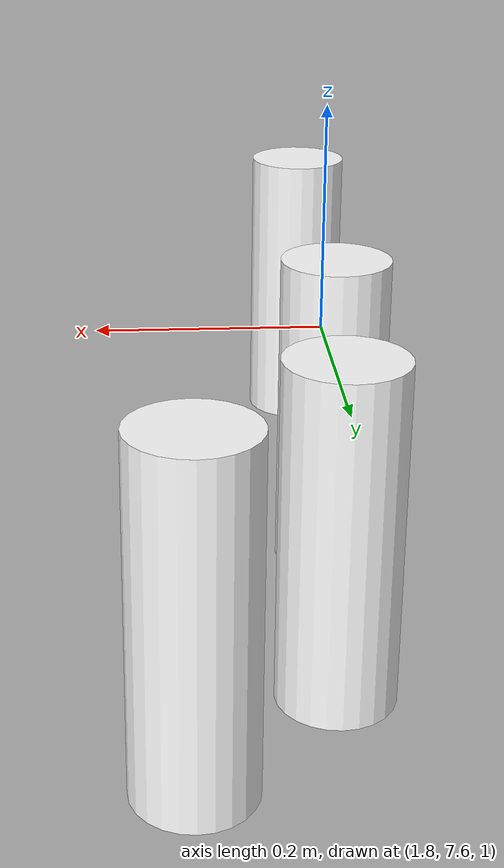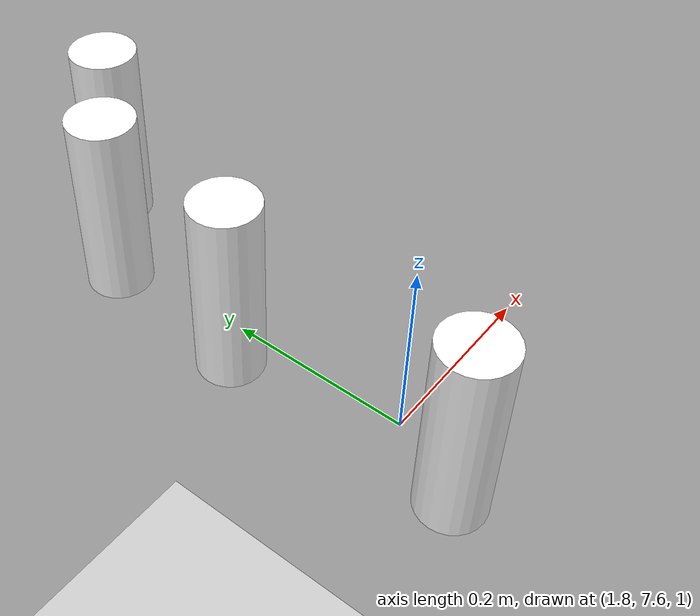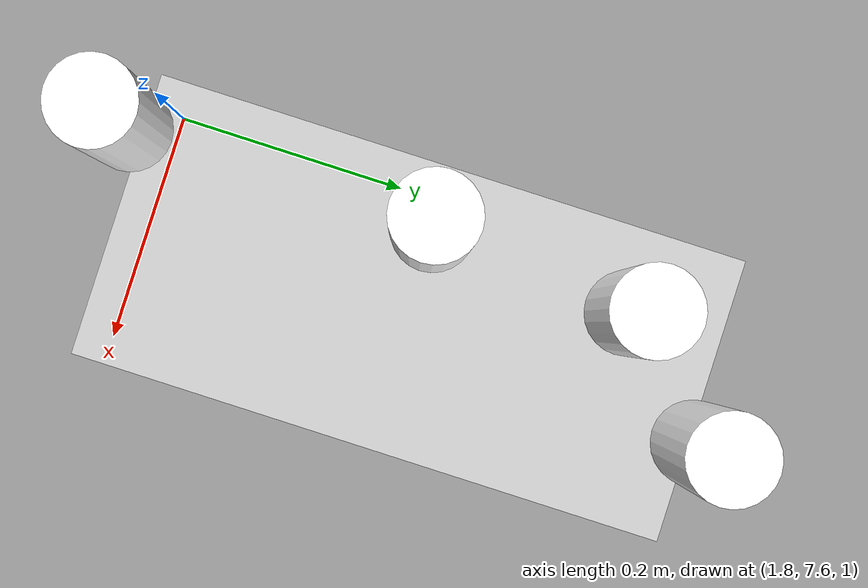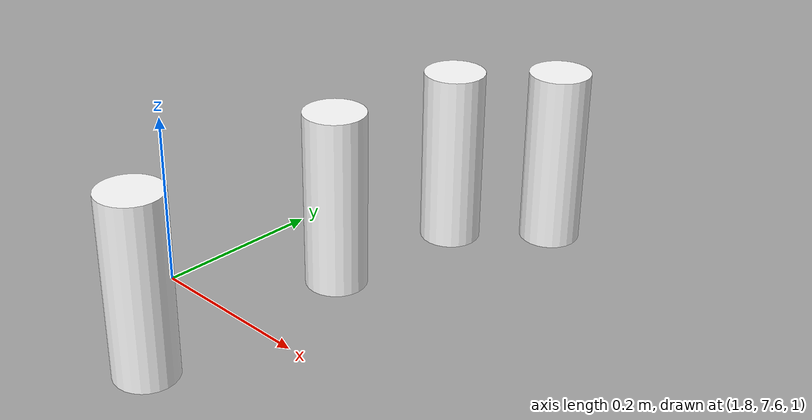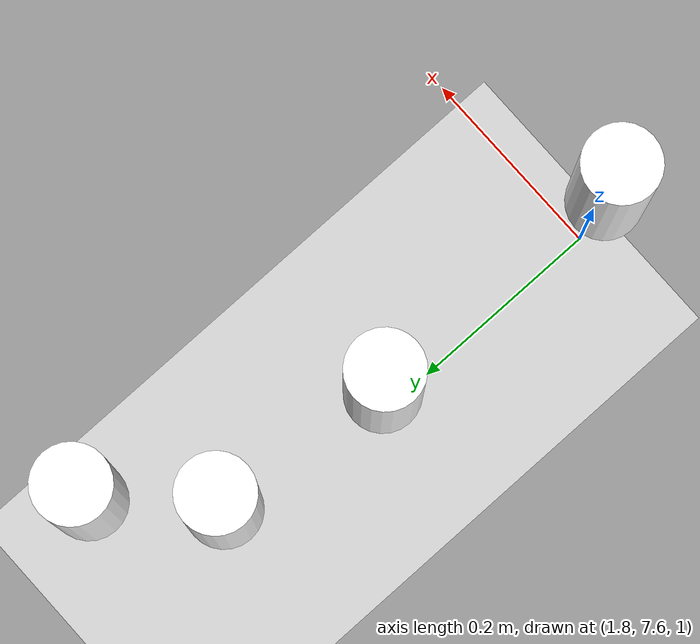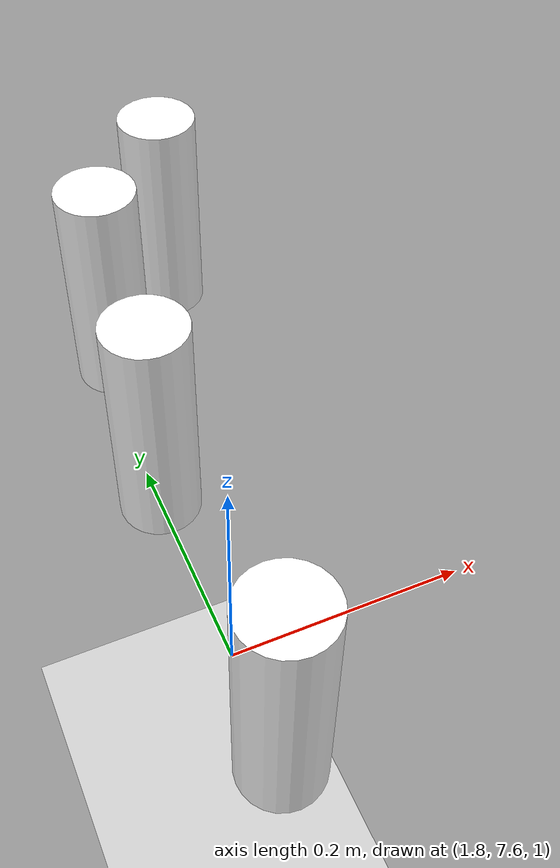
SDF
<sdf version="1.6">
 <world name="default">
  <model name="ground_plane">
   <static>1</static>
   <link name="link">
    <collision name="collision">
     <geometry><plane><normal>0 0 1</normal><size>100 100</size></plane></geometry>
     <surface><friction><ode><mu>100</mu><mu2>50</mu2></ode></friction></surface>
    </collision>
    <visual name="visual">
     <cast_shadows>0</cast_shadows>
     <geometry><plane><normal>0 0 1</normal><size>100 100</size></plane></geometry>
     <material>
      <script><uri>file://media/materials/scripts/gazebo.material</uri><name>Gazebo/Grey</name></script>
     </material>
    </visual>
   </link>
  </model>
  <model name="pringles_clone">
   <link name="link">
    <inertial>
     <mass>0.25</mass>
     <inertia><ixx>0</ixx><ixy>0</ixy><ixz>0</ixz><iyy>0</iyy><iyz>0</iyz><izz>0</izz></inertia>
    </inertial>
    <velocity_decay><linear>0</linear><angular>0</angular></velocity_decay>
    <visual name="visual">
     <geometry><cylinder><radius>0.04</radius><length>0.235</length></cylinder></geometry>
     <material>
      <script>
       <uri>model://pringles/material/scripts</uri>
       <uri>model://pringles/material/textures</uri>
       <name>Custom/pringles</name>
      </script>
      <shader type="pixel"/>
      <ambient>1 1 1 1</ambient>
      <diffuse>1 1 1 1</diffuse>
      <specular>0 0 0 1</specular>
      <emissive>0 0 0 1</emissive>
     </material>
    </visual>
    <collision name="collision">
     <geometry><cylinder><radius>0.04</radius><length>0.235</length></cylinder></geometry>
     <surface>
      <friction>
       <ode><mu>1</mu><mu2>1</mu2><fdir1>0 0 0</fdir1><slip1>0</slip1><slip2>0</slip2></ode>
       <torsional>
        <coefficient>1</coefficient>
        <patch_radius>0</patch_radius>
        <surface_radius>0</surface_radius>
        <use_patch_radius>1</use_patch_radius>
        <ode><slip>0</slip></ode>
       </torsional>
      </friction>
      <bounce><restitution_coefficient>0</restitution_coefficient><threshold>1e+06</threshold></bounce>
      <contact>
       <collide_without_contact>0</collide_without_contact>
       <collide_without_contact_bitmask>1</collide_without_contact_bitmask>
       <collide_bitmask>1</collide_bitmask>
       <ode>
        <soft_cfm>0</soft_cfm>
        <soft_erp>0.2</soft_erp>
        <kp>1e+13</kp>
        <kd>1</kd>
        <max_vel>0.01</max_vel>
        <min_depth>0</min_depth>
       </ode>
       <bullet>
        <split_impulse>1</split_impulse>
        <split_impulse_penetration_threshold>-0.01</split_impulse_penetration_threshold>
        <soft_cfm>0</soft_cfm>
        <soft_erp>0.2</soft_erp>
        <kp>1e+13</kp>
        <kd>1</kd>
       </bullet>
      </contact>
     </surface>
    </collision>
   </link>
   <static>1</static>
   <pose>1.81767 7.54223 1.0228 0 -0 0</pose>
  </model>
  <model name="pringles_clone_2">
   <link name="link">
    <inertial>
     <mass>0.25</mass>
     <inertia><ixx>0</ixx><ixy>0</ixy><ixz>0</ixz><iyy>0</iyy><iyz>0</iyz><izz>0</izz></inertia>
    </inertial>
    <velocity_decay><linear>0</linear><angular>0</angular></velocity_decay>
    <visual name="visual">
     <geometry><cylinder><radius>0.04</radius><length>0.235</length></cylinder></geometry>
     <material>
      <script>
       <uri>model://pringles/material/scripts</uri>
       <uri>model://pringles/material/textures</uri>
       <name>Custom/pringles</name>
      </script>
      <shader type="pixel"/>
      <ambient>1 1 1 1</ambient>
      <diffuse>1 1 1 1</diffuse>
      <specular>0 0 0 1</specular>
      <emissive>0 0 0 1</emissive>
     </material>
    </visual>
    <collision name="collision">
     <geometry><cylinder><radius>0.04</radius><length>0.235</length></cylinder></geometry>
     <surface>
      <friction>
       <ode><mu>1</mu><mu2>1</mu2><fdir1>0 0 0</fdir1><slip1>0</slip1><slip2>0</slip2></ode>
       <torsional>
        <coefficient>1</coefficient>
        <patch_radius>0</patch_radius>
        <surface_radius>0</surface_radius>
        <use_patch_radius>1</use_patch_radius>
        <ode><slip>0</slip></ode>
       </torsional>
      </friction>
      <bounce><restitution_coefficient>0</restitution_coefficient><threshold>1e+06</threshold></bounce>
      <contact>
       <collide_without_contact>0</collide_without_contact>
       <collide_without_contact_bitmask>1</collide_without_contact_bitmask>
       <collide_bitmask>1</collide_bitmask>
       <ode>
        <soft_cfm>0</soft_cfm>
        <soft_erp>0.2</soft_erp>
        <kp>1e+13</kp>
        <kd>1</kd>
        <max_vel>0.01</max_vel>
        <min_depth>0</min_depth>
       </ode>
       <bullet>
        <split_impulse>1</split_impulse>
        <split_impulse_penetration_threshold>-0.01</split_impulse_penetration_threshold>
        <soft_cfm>0</soft_cfm>
        <soft_erp>0.2</soft_erp>
        <kp>1e+13</kp>
        <kd>1</kd>
       </bullet>
      </contact>
     </surface>
    </collision>
   </link>
   <static>1</static>
   <pose>1.82108 7.83735 1.0228 0 -0 0</pose>
  </model>
  <model name="pringles2">
   <link name="link">
    <inertial>
     <mass>0.25</mass>
     <inertia><ixx>0</ixx><ixy>0</ixy><ixz>0</ixz><iyy>0</iyy><iyz>0</iyz><izz>0</izz></inertia>
    </inertial>
    <velocity_decay><linear>0</linear><angular>0</angular></velocity_decay>
    <visual name="visual">
     <pose>0 0 0.12 -3.14159 0 0</pose>
     <geometry><cylinder><radius>0.04</radius><length>0.235</length></cylinder></geometry>
     <material>
      <script>
       <uri>model://pringles2/material/scripts</uri>
       <uri>model://pringles2/material/textures</uri>
       <name>Custom/pringles2</name>
      </script>
      <shader type="pixel"/>
      <ambient>1 1 1 1</ambient>
      <diffuse>1 1 1 1</diffuse>
      <specular>0 0 0 1</specular>
      <emissive>0 0 0 1</emissive>
     </material>
    </visual>
    <collision name="collision">
     <pose>0 0 0.12 -3.14159 0 0</pose>
     <geometry><cylinder><radius>0.04</radius><length>0.235</length></cylinder></geometry>
     <surface>
      <friction>
       <ode><mu>1</mu><mu2>1</mu2><fdir1>0 0 0</fdir1><slip1>0</slip1><slip2>0</slip2></ode>
       <torsional>
        <coefficient>1</coefficient>
        <patch_radius>0</patch_radius>
        <surface_radius>0</surface_radius>
        <use_patch_radius>1</use_patch_radius>
        <ode><slip>0</slip></ode>
       </torsional>
      </friction>
      <bounce><restitution_coefficient>0</restitution_coefficient><threshold>1e+06</threshold></bounce>
      <contact>
       <collide_without_contact>0</collide_without_contact>
       <collide_without_contact_bitmask>1</collide_without_contact_bitmask>
       <collide_bitmask>1</collide_bitmask>
       <ode>
        <soft_cfm>0</soft_cfm>
        <soft_erp>0.2</soft_erp>
        <kp>1e+13</kp>
        <kd>1</kd>
        <max_vel>0.01</max_vel>
        <min_depth>0</min_depth>
       </ode>
       <bullet>
        <split_impulse>1</split_impulse>
        <split_impulse_penetration_threshold>-0.01</split_impulse_penetration_threshold>
        <soft_cfm>0</soft_cfm>
        <soft_erp>0.2</soft_erp>
        <kp>1e+13</kp>
        <kd>1</kd>
       </bullet>
      </contact>
     </surface>
    </collision>
   </link>
   <static>1</static>
   <pose>1.83983 8.03188 0.9037 0 -0 0</pose>
  </model>
  <model name="pringles2_clone_10">
   <link name="link">
    <inertial>
     <mass>0.25</mass>
     <inertia><ixx>0</ixx><ixy>0</ixy><ixz>0</ixz><iyy>0</iyy><iyz>0</iyz><izz>0</izz></inertia>
    </inertial>
    <velocity_decay><linear>0</linear><angular>0</angular></velocity_decay>
    <visual name="visual">
     <pose>0 0 0.12 -3.14159 0 0</pose>
     <geometry><cylinder><radius>0.04</radius><length>0.235</length></cylinder></geometry>
     <material>
      <script>
       <uri>model://pringles2/material/scripts</uri>
       <uri>model://pringles2/material/textures</uri>
       <name>Custom/pringles2</name>
      </script>
      <shader type="pixel"/>
      <ambient>1 1 1 1</ambient>
      <diffuse>1 1 1 1</diffuse>
      <specular>0 0 0 1</specular>
      <emissive>0 0 0 1</emissive>
     </material>
    </visual>
    <collision name="collision">
     <pose>0 0 0.12 -3.14159 0 0</pose>
     <geometry><cylinder><radius>0.04</radius><length>0.235</length></cylinder></geometry>
     <surface>
      <friction>
       <ode><mu>1</mu><mu2>1</mu2><fdir1>0 0 0</fdir1><slip1>0</slip1><slip2>0</slip2></ode>
       <torsional>
        <coefficient>1</coefficient>
        <patch_radius>0</patch_radius>
        <surface_radius>0</surface_radius>
        <use_patch_radius>1</use_patch_radius>
        <ode><slip>0</slip></ode>
       </torsional>
      </friction>
      <bounce><restitution_coefficient>0</restitution_coefficient><threshold>1e+06</threshold></bounce>
      <contact>
       <collide_without_contact>0</collide_without_contact>
       <collide_without_contact_bitmask>1</collide_without_contact_bitmask>
       <collide_bitmask>1</collide_bitmask>
       <ode>
        <soft_cfm>0</soft_cfm>
        <soft_erp>0.2</soft_erp>
        <kp>1e+13</kp>
        <kd>1</kd>
        <max_vel>0.01</max_vel>
        <min_depth>0</min_depth>
       </ode>
       <bullet>
        <split_impulse>1</split_impulse>
        <split_impulse_penetration_threshold>-0.01</split_impulse_penetration_threshold>
        <soft_cfm>0</soft_cfm>
        <soft_erp>0.2</soft_erp>
        <kp>1e+13</kp>
        <kd>1</kd>
       </bullet>
      </contact>
     </surface>
    </collision>
   </link>
   <static>1</static>
   <pose>1.93541 8.12645 0.9037 0 -0 0</pose>
  </model>
 </world>
</sdf>
